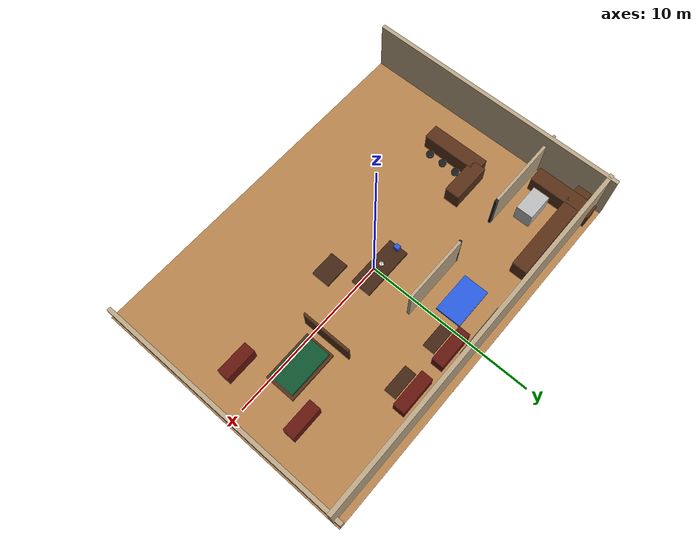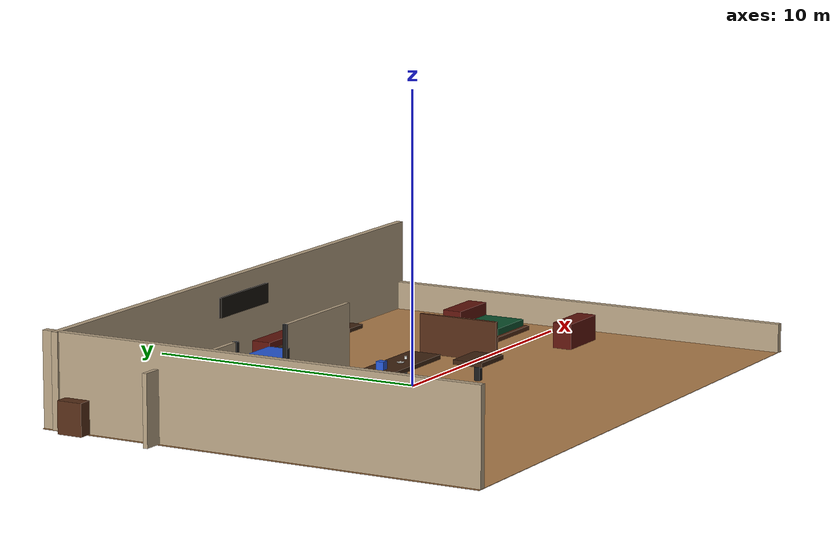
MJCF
<mujoco model="basic_restaurant_open">
  <compiler angle="degree" coordinate="local"/>
  <option timestep="0.002" gravity="0 0 -9.81"/>

  <visual>
    <headlight diffuse="0.65 0.65 0.65" ambient="0.40 0.36 0.32"/>
    <rgba haze="0.05 0.05 0.05 1"/>
  </visual>

  <asset>
    <texture name="wood" type="2d" file="assets/floor/stylish_diner_floor_planks.png"/>
    <material name="floor_wood" texture="wood" texrepeat="12.5 9.1" reflectance="0" specular="0" shininess="1"/>
    <material name="wall" rgba="0.72 0.64 0.52 1"/>
    <material name="dark_metal" rgba="0.10 0.10 0.10 1"/>
    <material name="bar_wood" rgba="0.34 0.18 0.09 1"/>
    <material name="booth_red" rgba="0.38 0.08 0.05 1"/>
    <material name="table_top" rgba="0.25 0.14 0.07 1"/>
    <material name="felt" rgba="0.05 0.32 0.18 1"/>
    <material name="blue_target" rgba="0.15 0.35 0.85 1"/>
    <material name="light_gray" rgba="0.72 0.72 0.72 1"/>
    <material name="ceramic_white" rgba="0.95 0.95 0.93 1"/>
  </asset>

  <worldbody>
    <!-- =========================
         MAIN FLOOR / ROOM SHELL
         ========================= -->
    <geom name="floor" type="box" pos="0 -0.6096 -0.01" size="11 7.9146 0.01" material="floor_wood"/>

    <geom name="back_wall"  type="box" pos="0 6.8 1.6"  size="11 0.12 1.6" material="wall"/>
    <geom name="left_wall"  type="box" pos="-10.8 -0.6096 1.6" size="0.12 7.9146 1.6" material="wall"/>
    <geom name="right_low"  type="box" pos="10.8 -0.6096 0.5" size="0.12 7.9146 0.5" material="wall"/>

    <!-- sign board -->
    <geom name="sign_board" type="box" pos="0 6.65 2.25" size="1.5 0.06 0.35" rgba="0.08 0.06 0.04 1"/>

    <!-- =========================
         BAR AREA (LEFT, COMPACT)
         ========================= -->
    <geom name="bar_long" type="box" pos="-8.2 -0.967 0.55" size="0.45 1.8 0.55" material="bar_wood"/>
    <geom name="bar_back" type="box" pos="-7.0 0.633 0.55" size="1.2 0.45 0.55" material="bar_wood"/>

    <geom name="stool_1" type="cylinder" pos="-7.35 -2.067 0.35" size="0.22 0.08" material="dark_metal"/>
    <geom name="stool_2" type="cylinder" pos="-7.35 -1.167 0.35" size="0.22 0.08" material="dark_metal"/>
    <geom name="stool_3" type="cylinder" pos="-7.35 -0.267 0.35" size="0.22 0.08" material="dark_metal"/>

    <!-- =========================
         CENTRAL DINING
         Keep sparse for maneuver room
         ========================= -->
    <geom name="big_table_top" type="box" pos="0.0 0.4 0.72" size="1.55 0.6 0.08" material="table_top"
          friction="0.3 0.005 0.0001"/>
    <geom name="big_table_leg" type="box" pos="0.0 0.4 0.35" size="0.12 0.12 0.35" material="dark_metal"/>

    <geom name="small_table_top" type="box" pos="1.8 -1.5 0.72" size="0.75 0.55 0.08" material="table_top"/>
    <geom name="small_table_leg" type="box" pos="1.8 -1.5 0.35" size="0.10 0.10 0.35" material="dark_metal"/>

    <!-- =========================
         BACK BOOTHS
         ========================= -->
    <geom name="back_booth_1" type="box" pos="1.0 5.9 0.45" size="1.1 0.35 0.45" material="booth_red"/>
    <geom name="back_table_1" type="box" pos="1.0 5.1 0.65" size="0.8 0.35 0.07" material="table_top"/>

    <geom name="back_booth_2" type="box" pos="4.0 5.9 0.45" size="1.1 0.35 0.45" material="booth_red"/>
    <geom name="back_table_2" type="box" pos="4.0 5.1 0.65" size="0.8 0.35 0.07" material="table_top"/>

    <!-- =========================
         RIGHT POOL / LOUNGE ZONE
         ========================= -->
    <geom name="pool_table_top"  type="box" pos="6.6 0.8 0.65" size="1.35 0.75 0.15" material="felt"/>
    <geom name="pool_table_body" type="box" pos="6.6 0.8 0.48" size="1.50 0.90 0.08" material="bar_wood"/>

    <geom name="pool_divider" type="box" pos="4.6 0.8 0.7" size="0.06 1.5 0.7" material="bar_wood"/>

    <geom name="lounge_booth_1" type="box" pos="8.5 -1.7 0.45" size="0.95 0.35 0.45" material="booth_red"/>
    <geom name="lounge_booth_2" type="box" pos="8.5  2.7 0.45" size="0.95 0.35 0.45" material="booth_red"/>

    <!-- =========================
         LARGE OPEN KITCHEN (BACK LEFT)
         Wide access opening for robot maneuvering
         ========================= -->

    <!-- front divider walls with a wide opening in the middle -->
    <geom name="kitchen_divider_left"  type="box" pos="-9.0 3.0 1.2" size="2.6 0.08 1.2" material="wall"/>
    <geom name="kitchen_divider_right" type="box" pos="-1.2 3.0 1.2" size="2.0 0.08 1.2" material="wall"/>

    <!-- posts at opening edges -->
    <geom name="kitchen_post_left"  type="box" pos="-6.3 3.0 1.2" size="0.08 0.08 1.2" material="dark_metal"/>
    <geom name="kitchen_post_right" type="box" pos="-3.2 3.0 1.2" size="0.08 0.08 1.2" material="dark_metal"/>

    <!-- back counter line -->
    <geom name="kitchen_counter_back" type="box" pos="-8.0 6.0 0.55" size="3.4 0.45 0.55" material="bar_wood"/>

    <!-- side counter along left wall -->
    <geom name="kitchen_counter_left" type="box" pos="-9.8 5.2 0.55" size="0.45 1.85 0.55" material="bar_wood"/>

    <!-- simple stainless island / work block -->
    <geom name="kitchen_island" type="box" pos="-8.2 4.3 0.55" size="0.8 0.5 0.55" material="light_gray"/>

    <!-- BLUE TARGET / PREP TABLE -->
    <geom name="blue_target_table_top" type="box" pos="-1.342 4.8 0.72" size="1.2 0.75 0.06" material="blue_target"/>
    <geom name="blue_target_leg_1" type="box" pos="-2.292 4.20 0.36" size="0.04 0.04 0.36" material="dark_metal"/>
    <geom name="blue_target_leg_2" type="box" pos="-0.392 4.20 0.36" size="0.04 0.04 0.36" material="dark_metal"/>
    <geom name="blue_target_leg_3" type="box" pos="-2.292 5.40 0.36" size="0.04 0.04 0.36" material="dark_metal"/>
    <geom name="blue_target_leg_4" type="box" pos="-0.392 5.40 0.36" size="0.04 0.04 0.36" material="dark_metal"/>

    <!-- optional blue target block on top of the central table -->
    <!-- Sizing/density/friction must match merged variants (g1_gear_wbc_stylish_diner.xml,
         g1_gear_wbc_stylish_diner_hands.xml). -->
    <body name="target_block" pos="-1.40 0.4 0.94">
      <freejoint/>
      <geom name="target_block_geom" type="box" size="0.14 0.14 0.14" material="blue_target"
            density="5" friction="3.0 0.1 0.005"/>
    </body>
    <body name="plate" pos="-0.20 0.35 0.808">
      <freejoint/>
      <geom name="plate_base_geom" type="cylinder" size="0.11 0.008" material="ceramic_white"
            density="350" friction="0.9 0.02 0.002"/>
      <geom name="plate_rim_geom" type="cylinder" pos="0 0 0.004" size="0.125 0.004" material="ceramic_white"
            density="350" friction="0.9 0.02 0.002"/>
    </body>
    <body name="cup" pos="0.35 0.47 0.851">
      <freejoint/>
      <geom name="cup_body_geom" type="cylinder" size="0.042 0.050" material="ceramic_white"
            density="320" friction="0.9 0.02 0.002"/>
      <geom name="cup_base_geom" type="cylinder" pos="0 0 -0.042" size="0.028 0.008" material="ceramic_white"
            density="320" friction="0.9 0.02 0.002"/>
      <geom name="cup_handle_geom" type="capsule" fromto="0.045 0 0.010 0.045 0 -0.030" size="0.007"
            material="ceramic_white" density="320" friction="0.9 0.02 0.002"/>
    </body>

    <!-- open staging space is intentionally left clear around the blue table -->

    <!-- =========================
         LIGHTING
         ========================= -->
    <light name="light_1" pos="-5.0 0.0 3.8" dir="0 0 -1" diffuse="0.88 0.70 0.42" specular="0.03 0.025 0.02"/>
    <light name="light_2" pos="0.0 0.5 3.8"  dir="0 0 -1" diffuse="0.88 0.70 0.42" specular="0.03 0.025 0.02"/>
    <light name="light_3" pos="5.5 1.2 3.8"  dir="0 0 -1" diffuse="0.88 0.70 0.42" specular="0.03 0.025 0.02"/>
    <light name="light_4" pos="-6.0 5.0 3.8" dir="0 0 -1" diffuse="0.82 0.82 0.90" specular="0.04 0.04 0.05"/>
  </worldbody>
</mujoco>
